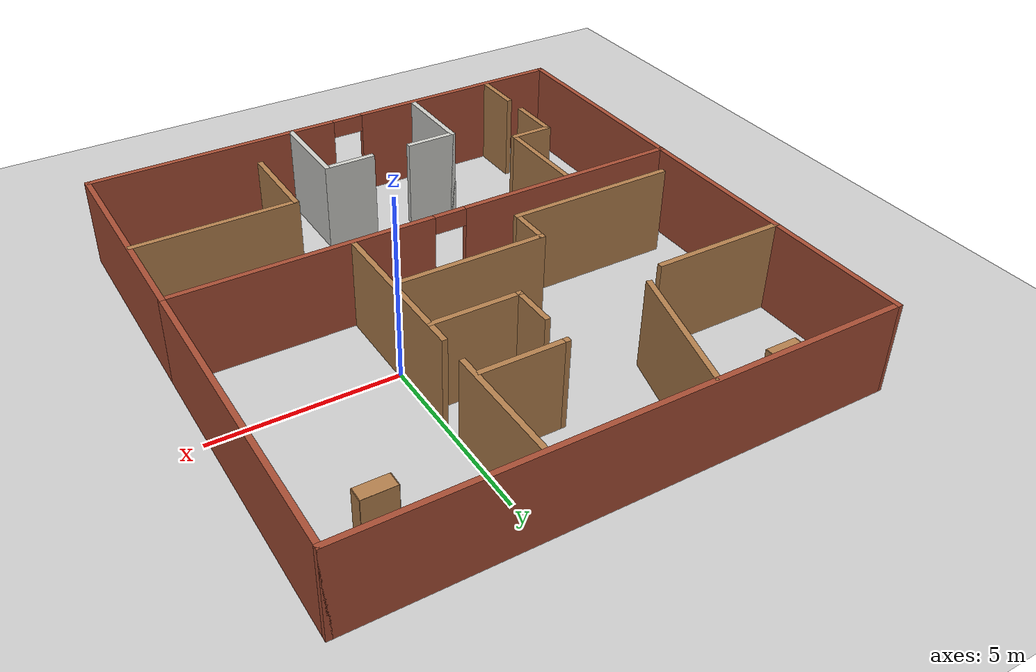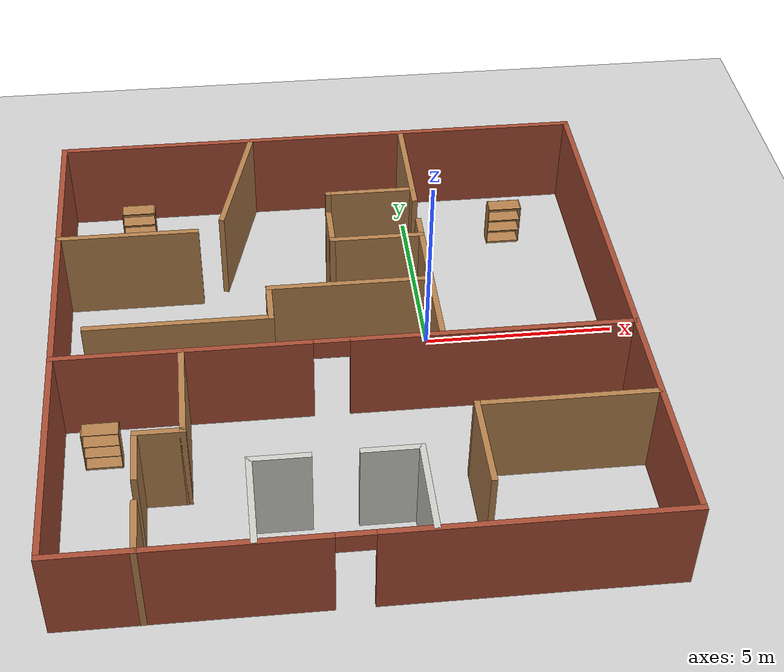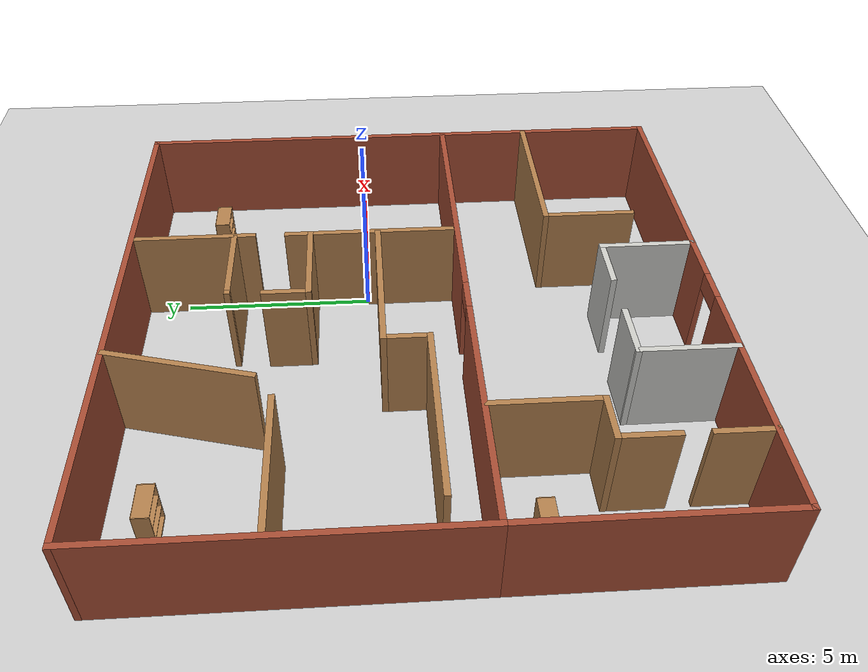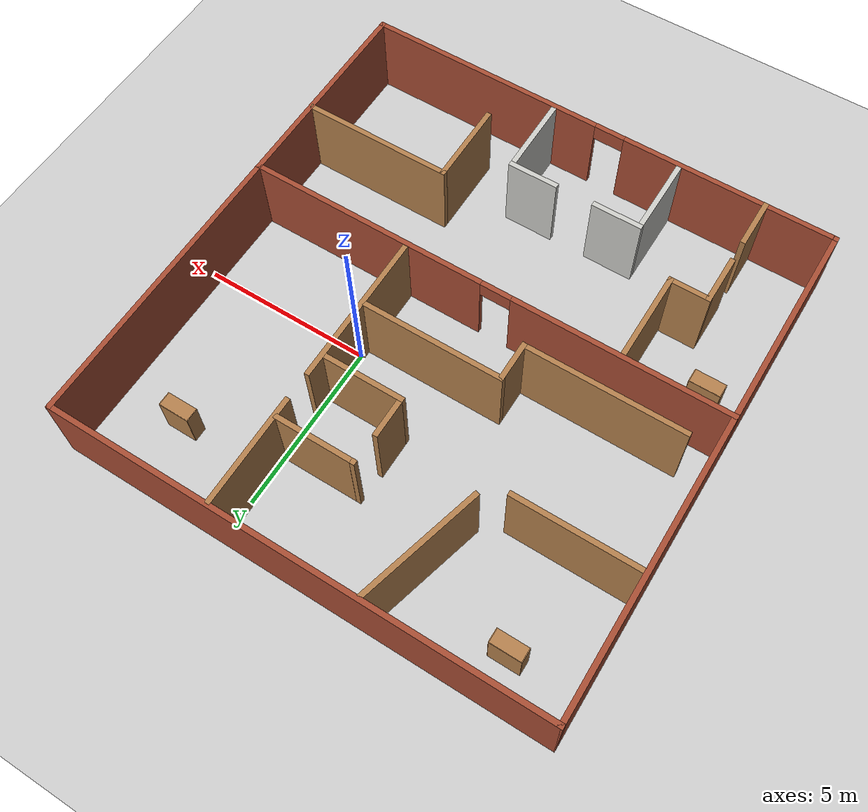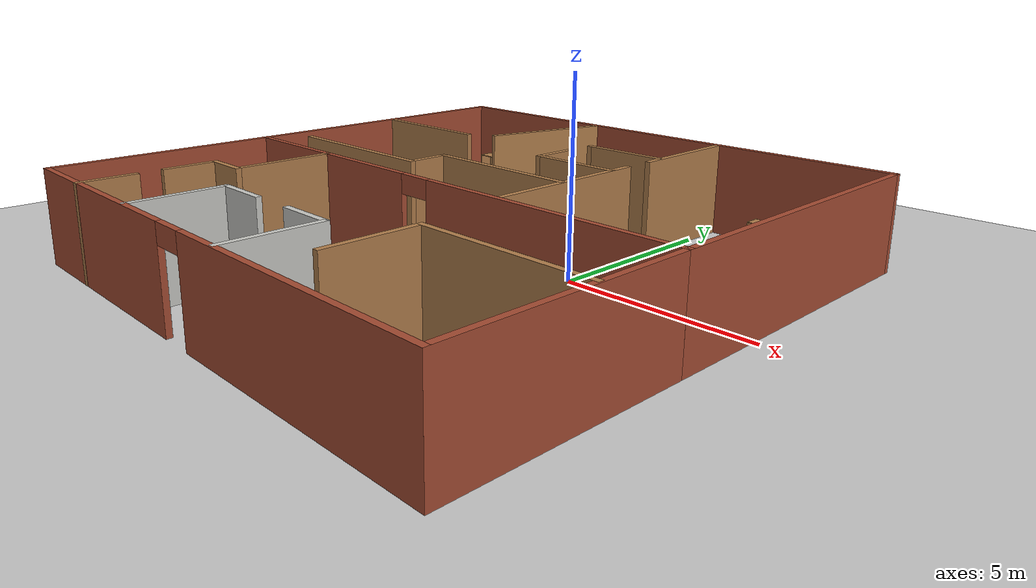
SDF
<sdf version="1.7">
 <world name="default">
  <light name="sun" type="directional">
   <pose>0 0 10 0 -0 0</pose>
   <diffuse>0.8 0.8 0.8 1</diffuse>
   <specular>0.2 0.2 0.2 1</specular>
   <attenuation>
    <range>1000</range>
    <constant>0.9</constant>
    <linear>0.01</linear>
    <quadratic>0.001</quadratic>
   </attenuation>
   <direction>-0.5 0.1 -0.9</direction>
   <spot><inner_angle>0</inner_angle><outer_angle>0</outer_angle><falloff>0</falloff></spot>
  </light>
  <model name="ground_plane">
   <static>1</static>
   <link name="link">
    <collision name="collision">
     <geometry><plane><normal>0 0 1</normal><size>100 100</size></plane></geometry>
     <surface><friction><ode><mu>100</mu><mu2>50</mu2></ode></friction></surface>
    </collision>
    <visual name="visual">
     <cast_shadows>0</cast_shadows>
     <geometry><plane><normal>0 0 1</normal><size>100 100</size></plane></geometry>
     <material>
      <script><uri>file://media/materials/scripts/gazebo.material</uri><name>Gazebo/Grey</name></script>
     </material>
    </visual>
   </link>
  </model>
  <gravity>0 0 -9.8</gravity>
  <magnetic_field>6e-06 2.3e-05 -4.2e-05</magnetic_field>
  <atmosphere type="adiabatic"/>
  <physics type="ode">
   <max_step_size>0.001</max_step_size>
   <real_time_factor>1</real_time_factor>
   <real_time_update_rate>1000</real_time_update_rate>
  </physics>
  <scene><ambient>0.4 0.4 0.4 1</ambient><background>0.7 0.7 0.7 1</background><shadows>1</shadows></scene>
  <audio><device>default</device></audio>
  <spherical_coordinates>
   <surface_model>EARTH_WGS84</surface_model>
   <latitude_deg>0</latitude_deg>
   <longitude_deg>0</longitude_deg>
   <elevation>0</elevation>
   <heading_deg>0</heading_deg>
  </spherical_coordinates>
  <model name="Untitled">
   <pose>-2.36663 -1.18476 0 0 -0 0</pose>
   <link name="Wall_1">
    <collision name="Wall_1_Collision">
     <geometry><box><size>8.75 0.15 2.5</size></box></geometry>
     <pose>0 0 1.25 0 -0 0</pose>
    </collision>
    <visual name="Wall_1_Visual">
     <pose>0 0 1.25 0 -0 0</pose>
     <geometry><box><size>8.75 0.15 2.5</size></box></geometry>
     <material>
      <script><uri>file://media/materials/scripts/gazebo.material</uri><name>Gazebo/Bricks</name></script>
      <ambient>1 1 1 1</ambient>
     </material>
     <meta><layer>0</layer></meta>
    </visual>
    <pose>-7.175 3.05351 0 0 -0 -1.5708</pose>
   </link>
   <link name="Wall_13">
    <collision name="Wall_13_Collision">
     <geometry><box><size>3.25 0.15 2.5</size></box></geometry>
     <pose>0 0 1.25 0 -0 0</pose>
    </collision>
    <visual name="Wall_13_Visual">
     <pose>0 0 1.25 0 -0 0</pose>
     <geometry><box><size>3.25 0.15 2.5</size></box></geometry>
     <material>
      <script><uri>file://media/materials/scripts/gazebo.material</uri><name>Gazebo/Wood</name></script>
      <ambient>1 1 1 1</ambient>
     </material>
     <meta><layer>0</layer></meta>
    </visual>
    <pose>2.35921 5.71681 0 0 -0 -1.5708</pose>
   </link>
   <link name="Wall_16">
    <collision name="Wall_16_Collision">
     <geometry><box><size>4.5 0.15 2.5</size></box></geometry>
     <pose>0 0 1.25 0 -0 0</pose>
    </collision>
    <visual name="Wall_16_Visual">
     <pose>0 0 1.25 0 -0 0</pose>
     <geometry><box><size>4.5 0.15 2.5</size></box></geometry>
     <material>
      <script><uri>file://media/materials/scripts/gazebo.material</uri><name>Gazebo/Wood</name></script>
      <ambient>1 1 1 1</ambient>
     </material>
     <meta><layer>0</layer></meta>
    </visual>
    <pose>2.34628 1.08384 0 0 -0 -1.5708</pose>
   </link>
   <link name="Wall_2">
    <pose>0 -1.24649 0 0 -0 0</pose>
    <visual name="Wall_2_Visual_0">
     <pose>-4.04235 0 1.25 0 -0 0</pose>
     <geometry><box><size>6.4153 0.15 2.5</size></box></geometry>
     <material>
      <script><uri>file://media/materials/scripts/gazebo.material</uri><name>Gazebo/Bricks</name></script>
      <ambient>1 1 1 1</ambient>
     </material>
     <meta><layer>0</layer></meta>
    </visual>
    <collision name="Wall_2_Collision_0">
     <geometry><box><size>6.4153 0.15 2.5</size></box></geometry>
     <pose>-4.04235 0 1.25 0 -0 0</pose>
    </collision>
    <visual name="Wall_2_Visual_1">
     <pose>3.65765 0 1.25 0 -0 0</pose>
     <geometry><box><size>7.1847 0.15 2.5</size></box></geometry>
     <material>
      <script><uri>file://media/materials/scripts/gazebo.material</uri><name>Gazebo/Bricks</name></script>
      <ambient>1 1 1 1</ambient>
     </material>
     <meta><layer>0</layer></meta>
    </visual>
    <collision name="Wall_2_Collision_1">
     <geometry><box><size>7.1847 0.15 2.5</size></box></geometry>
     <pose>3.65765 0 1.25 0 -0 0</pose>
    </collision>
    <visual name="Wall_2_Visual_2">
     <pose>-0.384696 0 2.25 0 -0 0</pose>
     <geometry><box><size>0.9 0.15 0.5</size></box></geometry>
     <material>
      <script><uri>file://media/materials/scripts/gazebo.material</uri><name>Gazebo/Bricks</name></script>
      <ambient>1 1 1 1</ambient>
     </material>
     <meta><layer>0</layer></meta>
    </visual>
    <collision name="Wall_2_Collision_2">
     <geometry><box><size>0.9 0.15 0.5</size></box></geometry>
     <pose>-0.384696 0 2.25 0 -0 0</pose>
    </collision>
   </link>
   <link name="Wall_22">
    <collision name="Wall_22_Collision">
     <geometry><box><size>3.75 0.15 2.5</size></box></geometry>
     <pose>0 0 1.25 0 -0 0</pose>
    </collision>
    <visual name="Wall_22_Visual">
     <pose>0 0 1.25 0 -0 0</pose>
     <geometry><box><size>3.75 0.15 2.5</size></box></geometry>
     <material>
      <script><uri>file://media/materials/scripts/gazebo.material</uri><name>Gazebo/Wood</name></script>
      <ambient>1 1 1 1</ambient>
     </material>
     <meta><layer>0</layer></meta>
    </visual>
    <pose>-5.37429 3.37191 0 0 -0 0</pose>
   </link>
   <link name="Wall_3">
    <collision name="Wall_3_Collision">
     <geometry><box><size>8.75 0.15 2.5</size></box></geometry>
     <pose>0 0 1.25 0 -0 0</pose>
    </collision>
    <visual name="Wall_3_Visual">
     <pose>0 0 1.25 0 -0 0</pose>
     <geometry><box><size>8.75 0.15 2.5</size></box></geometry>
     <material>
      <script><uri>file://media/materials/scripts/gazebo.material</uri><name>Gazebo/Bricks</name></script>
      <ambient>1 1 1 1</ambient>
     </material>
     <meta><layer>0</layer></meta>
    </visual>
    <pose>7.175 3.05351 0 0 -0 1.5708</pose>
   </link>
   <link name="Wall_30">
    <collision name="Wall_30_Collision">
     <geometry><box><size>1.5 0.15 2.5</size></box></geometry>
     <pose>0 0 1.25 0 -0 0</pose>
    </collision>
    <visual name="Wall_30_Visual">
     <pose>0 0 1.25 0 -0 0</pose>
     <geometry><box><size>1.5 0.15 2.5</size></box></geometry>
     <material>
      <script><uri>file://media/materials/scripts/gazebo.material</uri><name>Gazebo/CeilingTiled</name></script>
      <ambient>1 1 1 1</ambient>
     </material>
     <meta><layer>0</layer></meta>
    </visual>
    <pose>0.662776 -4.9551 0 0 -0 3.14159</pose>
   </link>
   <link name="Wall_32">
    <collision name="Wall_32_Collision">
     <geometry><box><size>2.5 0.15 2.5</size></box></geometry>
     <pose>0 0 1.25 0 -0 0</pose>
    </collision>
    <visual name="Wall_32_Visual">
     <pose>0 0 1.25 0 -0 0</pose>
     <geometry><box><size>2.5 0.15 2.5</size></box></geometry>
     <material>
      <script><uri>file://media/materials/scripts/gazebo.material</uri><name>Gazebo/CeilingTiled</name></script>
      <ambient>1 1 1 1</ambient>
     </material>
     <meta><layer>0</layer></meta>
    </visual>
    <pose>1.33778 -6.13011 0 0 -0 -1.5708</pose>
   </link>
   <link name="Wall_37">
    <collision name="Wall_37_Collision">
     <geometry><box><size>2.5 0.15 2.5</size></box></geometry>
     <pose>0 0 1.25 0 -0 0</pose>
    </collision>
    <visual name="Wall_37_Visual">
     <pose>0 0 1.25 0 -0 0</pose>
     <geometry><box><size>2.5 0.15 2.5</size></box></geometry>
     <material>
      <script><uri>file://media/materials/scripts/gazebo.material</uri><name>Gazebo/CeilingTiled</name></script>
      <ambient>1 1 1 1</ambient>
     </material>
     <meta><layer>0</layer></meta>
    </visual>
    <pose>-2.59232 -6.14373 0 0 -0 -1.5708</pose>
   </link>
   <link name="Wall_39">
    <collision name="Wall_39_Collision">
     <geometry><box><size>1.5 0.15 2.5</size></box></geometry>
     <pose>0 0 1.25 0 -0 0</pose>
    </collision>
    <visual name="Wall_39_Visual">
     <pose>0 0 1.25 0 -0 0</pose>
     <geometry><box><size>1.5 0.15 2.5</size></box></geometry>
     <material>
      <script><uri>file://media/materials/scripts/gazebo.material</uri><name>Gazebo/CeilingTiled</name></script>
      <ambient>1 1 1 1</ambient>
     </material>
     <meta><layer>0</layer></meta>
    </visual>
    <pose>-1.91732 -4.96873 0 0 -0 0</pose>
   </link>
   <link name="Wall_41">
    <collision name="Wall_41_Collision">
     <geometry><box><size>2.75 0.15 2.5</size></box></geometry>
     <pose>0 0 1.25 0 -0 0</pose>
    </collision>
    <visual name="Wall_41_Visual">
     <pose>0 0 1.25 0 -0 0</pose>
     <geometry><box><size>2.75 0.15 2.5</size></box></geometry>
     <material>
      <script><uri>file://media/materials/scripts/gazebo.material</uri><name>Gazebo/Wood</name></script>
      <ambient>1 1 1 1</ambient>
     </material>
     <meta><layer>0</layer></meta>
    </visual>
    <pose>-4.04359 -2.61132 0 0 -0 -1.5708</pose>
   </link>
   <link name="Wall_42">
    <collision name="Wall_42_Collision">
     <geometry><box><size>1.25 0.15 2.5</size></box></geometry>
     <pose>0 0 1.25 0 -0 0</pose>
    </collision>
    <visual name="Wall_42_Visual">
     <pose>0 0 1.25 0 -0 0</pose>
     <geometry><box><size>1.25 0.15 2.5</size></box></geometry>
     <material>
      <script><uri>file://media/materials/scripts/gazebo.material</uri><name>Gazebo/Wood</name></script>
      <ambient>1 1 1 1</ambient>
     </material>
     <meta><layer>0</layer></meta>
    </visual>
    <pose>-4.59359 -3.91132 0 0 -0 3.14159</pose>
   </link>
   <link name="Wall_43">
    <collision name="Wall_43_Collision">
     <geometry><box><size>1.5 0.15 2.5</size></box></geometry>
     <pose>0 0 1.25 0 -0 0</pose>
    </collision>
    <visual name="Wall_43_Visual">
     <pose>0 0 1.25 0 -0 0</pose>
     <geometry><box><size>1.5 0.15 2.5</size></box></geometry>
     <material>
      <script><uri>file://media/materials/scripts/gazebo.material</uri><name>Gazebo/Wood</name></script>
      <ambient>1 1 1 1</ambient>
     </material>
     <meta><layer>0</layer></meta>
    </visual>
    <pose>-5.14359 -4.58632 0 0 -0 -1.5708</pose>
   </link>
   <link name="Wall_45">
    <collision name="Wall_45_Collision">
     <geometry><box><size>1.5 0.15 2.5</size></box></geometry>
     <pose>0 0 1.25 0 -0 0</pose>
    </collision>
    <visual name="Wall_45_Visual">
     <pose>0 0 1.25 0 -0 0</pose>
     <geometry><box><size>1.5 0.15 2.5</size></box></geometry>
     <material>
      <script><uri>file://media/materials/scripts/gazebo.material</uri><name>Gazebo/Wood</name></script>
      <ambient>1 1 1 1</ambient>
     </material>
     <meta><layer>0</layer></meta>
    </visual>
    <pose>-5.13731 -6.67851 0 0 -0 -1.5708</pose>
   </link>
   <link name="Wall_47">
    <collision name="Wall_47_Collision">
     <geometry><box><size>4.25 0.15 2.5</size></box></geometry>
     <pose>0 0 1.25 0 -0 0</pose>
    </collision>
    <visual name="Wall_47_Visual">
     <pose>0 0 1.25 0 -0 0</pose>
     <geometry><box><size>4.25 0.15 2.5</size></box></geometry>
     <material>
      <script><uri>file://media/materials/scripts/gazebo.material</uri><name>Gazebo/Wood</name></script>
      <ambient>1 1 1 1</ambient>
     </material>
     <meta><layer>0</layer></meta>
    </visual>
    <pose>0.253068 0.868139 0 0 -0 3.14159</pose>
   </link>
   <link name="Wall_48">
    <collision name="Wall_48_Collision">
     <geometry><box><size>1.25 0.15 2.5</size></box></geometry>
     <pose>0 0 1.25 0 -0 0</pose>
    </collision>
    <visual name="Wall_48_Visual">
     <pose>0 0 1.25 0 -0 0</pose>
     <geometry><box><size>1.25 0.15 2.5</size></box></geometry>
     <material>
      <script><uri>file://media/materials/scripts/gazebo.material</uri><name>Gazebo/Wood</name></script>
      <ambient>1 1 1 1</ambient>
     </material>
     <meta><layer>0</layer></meta>
    </visual>
    <pose>-1.79693 0.318139 0 0 -0 -1.5708</pose>
   </link>
   <link name="Wall_49">
    <collision name="Wall_49_Collision">
     <geometry><box><size>4.75 0.15 2.5</size></box></geometry>
     <pose>0 0 1.25 0 -0 0</pose>
    </collision>
    <visual name="Wall_49_Visual">
     <pose>0 0 1.25 0 -0 0</pose>
     <geometry><box><size>4.75 0.15 2.5</size></box></geometry>
     <material>
      <script><uri>file://media/materials/scripts/gazebo.material</uri><name>Gazebo/Wood</name></script>
      <ambient>1 1 1 1</ambient>
     </material>
     <meta><layer>0</layer></meta>
    </visual>
    <pose>-4.09693 -0.231861 0 0 -0 3.14159</pose>
   </link>
   <link name="Wall_5">
    <collision name="Wall_5_Collision">
     <geometry><box><size>14.5 0.15 2.5</size></box></geometry>
     <pose>0 0 1.25 0 -0 0</pose>
    </collision>
    <visual name="Wall_5_Visual">
     <pose>0 0 1.25 0 -0 0</pose>
     <geometry><box><size>14.5 0.15 2.5</size></box></geometry>
     <material>
      <script><uri>file://media/materials/scripts/gazebo.material</uri><name>Gazebo/Bricks</name></script>
      <ambient>1 1 1 1</ambient>
     </material>
     <meta><layer>0</layer></meta>
    </visual>
    <pose>0 7.35351 0 0 -0 0</pose>
   </link>
   <link name="Wall_55">
    <collision name="Wall_55_Collision">
     <geometry><box><size>3.75 0.15 2.5</size></box></geometry>
     <pose>0 0 1.25 0 -0 0</pose>
    </collision>
    <visual name="Wall_55_Visual">
     <pose>0 0 1.25 0 -0 0</pose>
     <geometry><box><size>3.75 0.15 2.5</size></box></geometry>
     <material>
      <script><uri>file://media/materials/scripts/gazebo.material</uri><name>Gazebo/Wood</name></script>
      <ambient>1 1 1 1</ambient>
     </material>
     <meta><layer>0</layer></meta>
    </visual>
    <pose>-2.39934 5.56245 0 0 -0 -1.8326</pose>
   </link>
   <link name="Wall_57">
    <collision name="Wall_57_Collision">
     <geometry><box><size>4.5 0.15 2.5</size></box></geometry>
     <pose>0 0 1.25 0 -0 0</pose>
    </collision>
    <visual name="Wall_57_Visual">
     <pose>0 0 1.25 0 -0 0</pose>
     <geometry><box><size>4.5 0.15 2.5</size></box></geometry>
     <material>
      <script><uri>file://media/materials/scripts/gazebo.material</uri><name>Gazebo/Wood</name></script>
      <ambient>1 1 1 1</ambient>
     </material>
     <meta><layer>0</layer></meta>
    </visual>
    <pose>4.9622 -3.71137 0 0 -0 3.14159</pose>
   </link>
   <link name="Wall_58">
    <collision name="Wall_58_Collision">
     <geometry><box><size>2.5 0.15 2.5</size></box></geometry>
     <pose>0 0 1.25 0 -0 0</pose>
    </collision>
    <visual name="Wall_58_Visual">
     <pose>0 0 1.25 0 -0 0</pose>
     <geometry><box><size>2.5 0.15 2.5</size></box></geometry>
     <material>
      <script><uri>file://media/materials/scripts/gazebo.material</uri><name>Gazebo/Wood</name></script>
      <ambient>1 1 1 1</ambient>
     </material>
     <meta><layer>0</layer></meta>
    </visual>
    <pose>2.7872 -4.88637 0 0 -0 -1.5708</pose>
   </link>
   <link name="Wall_68">
    <collision name="Wall_68_Collision">
     <geometry><box><size>0.15 0.15 2.5</size></box></geometry>
     <pose>0 0 1.25 0 -0 0</pose>
    </collision>
    <visual name="Wall_68_Visual">
     <pose>0 0 1.25 0 -0 0</pose>
     <geometry><box><size>0.15 0.15 2.5</size></box></geometry>
     <material>
      <script><uri>file://media/materials/scripts/gazebo.material</uri><name>Gazebo/Wood</name></script>
      <ambient>1 1 1 1</ambient>
     </material>
     <meta><layer>0</layer></meta>
    </visual>
    <pose>0.049283 4.65202 0 0 -0 0</pose>
   </link>
   <link name="Wall_7">
    <collision name="Wall_7_Collision">
     <geometry><box><size>6.25 0.15 2.5</size></box></geometry>
     <pose>0 0 1.25 0 -0 0</pose>
    </collision>
    <visual name="Wall_7_Visual">
     <pose>0 0 1.25 0 -0 0</pose>
     <geometry><box><size>6.25 0.15 2.5</size></box></geometry>
     <material>
      <script><uri>file://media/materials/scripts/gazebo.material</uri><name>Gazebo/Bricks</name></script>
      <ambient>1 1 1 1</ambient>
     </material>
     <meta><layer>0</layer></meta>
    </visual>
    <pose>-7.175 -4.29648 0 0 -0 -1.5708</pose>
   </link>
   <link name="Wall_73">
    <collision name="Wall_73_Collision">
     <geometry><box><size>2.25 0.15 2.5</size></box></geometry>
     <pose>0 0 1.25 0 -0 0</pose>
    </collision>
    <visual name="Wall_73_Visual">
     <pose>0 0 1.25 0 -0 0</pose>
     <geometry><box><size>2.25 0.15 2.5</size></box></geometry>
     <material>
      <script><uri>file://media/materials/scripts/gazebo.material</uri><name>Gazebo/Wood</name></script>
      <ambient>1 1 1 1</ambient>
     </material>
     <meta><layer>0</layer></meta>
    </visual>
    <pose>1.24062 4.65266 0 0 -0 0</pose>
   </link>
   <link name="Wall_75">
    <collision name="Wall_75_Collision">
     <geometry><box><size>2.5 0.15 2.5</size></box></geometry>
     <pose>0 0 1.25 0 -0 0</pose>
    </collision>
    <visual name="Wall_75_Visual">
     <pose>0 0 1.25 0 -0 0</pose>
     <geometry><box><size>2.5 0.15 2.5</size></box></geometry>
     <material>
      <script><uri>file://media/materials/scripts/gazebo.material</uri><name>Gazebo/Wood</name></script>
      <ambient>1 1 1 1</ambient>
     </material>
     <meta><layer>0</layer></meta>
    </visual>
    <pose>1.16272 2.65061 0 0 -0 3.14159</pose>
   </link>
   <link name="Wall_76">
    <collision name="Wall_76_Collision">
     <geometry><box><size>1.25 0.15 2.5</size></box></geometry>
     <pose>0 0 1.25 0 -0 0</pose>
    </collision>
    <visual name="Wall_76_Visual">
     <pose>0 0 1.25 0 -0 0</pose>
     <geometry><box><size>1.25 0.15 2.5</size></box></geometry>
     <material>
      <script><uri>file://media/materials/scripts/gazebo.material</uri><name>Gazebo/Wood</name></script>
      <ambient>1 1 1 1</ambient>
     </material>
     <meta><layer>0</layer></meta>
    </visual>
    <pose>-0.012277 3.20061 0 0 -0 1.5708</pose>
   </link>
   <link name="Wall_8">
    <pose>0 -7.34649 0 0 -0 0</pose>
    <visual name="Wall_8_Visual_0">
     <pose>-4.05756 0 1.25 0 -0 0</pose>
     <geometry><box><size>6.38489 0.15 2.5</size></box></geometry>
     <material>
      <script><uri>file://media/materials/scripts/gazebo.material</uri><name>Gazebo/Bricks</name></script>
      <ambient>1 1 1 1</ambient>
     </material>
     <meta><layer>0</layer></meta>
    </visual>
    <collision name="Wall_8_Collision_0">
     <geometry><box><size>6.38489 0.15 2.5</size></box></geometry>
     <pose>-4.05756 0 1.25 0 -0 0</pose>
    </collision>
    <visual name="Wall_8_Visual_1">
     <pose>3.64244 0 1.25 0 -0 0</pose>
     <geometry><box><size>7.21511 0.15 2.5</size></box></geometry>
     <material>
      <script><uri>file://media/materials/scripts/gazebo.material</uri><name>Gazebo/Bricks</name></script>
      <ambient>1 1 1 1</ambient>
     </material>
     <meta><layer>0</layer></meta>
    </visual>
    <collision name="Wall_8_Collision_1">
     <geometry><box><size>7.21511 0.15 2.5</size></box></geometry>
     <pose>3.64244 0 1.25 0 -0 0</pose>
    </collision>
    <visual name="Wall_8_Visual_2">
     <pose>-0.415114 0 2.25 0 -0 0</pose>
     <geometry><box><size>0.9 0.15 0.5</size></box></geometry>
     <material>
      <script><uri>file://media/materials/scripts/gazebo.material</uri><name>Gazebo/Bricks</name></script>
      <ambient>1 1 1 1</ambient>
     </material>
     <meta><layer>0</layer></meta>
    </visual>
    <collision name="Wall_8_Collision_2">
     <geometry><box><size>0.9 0.15 0.5</size></box></geometry>
     <pose>-0.415114 0 2.25 0 -0 0</pose>
    </collision>
   </link>
   <link name="Wall_9">
    <collision name="Wall_9_Collision">
     <geometry><box><size>6.25 0.15 2.5</size></box></geometry>
     <pose>0 0 1.25 0 -0 0</pose>
    </collision>
    <visual name="Wall_9_Visual">
     <pose>0 0 1.25 0 -0 0</pose>
     <geometry><box><size>6.25 0.15 2.5</size></box></geometry>
     <material>
      <script><uri>file://media/materials/scripts/gazebo.material</uri><name>Gazebo/Bricks</name></script>
      <ambient>1 1 1 1</ambient>
     </material>
     <meta><layer>0</layer></meta>
    </visual>
    <pose>7.175 -4.29648 0 0 -0 1.5708</pose>
   </link>
   <static>1</static>
  </model>
  <model name="bookshelf">
   <static>1</static>
   <link name="link">
    <inertial><mass>1</mass></inertial>
    <collision name="back">
     <pose>0 0.005 0.6 0 -0 0</pose>
     <geometry><box><size>0.9 0.01 1.2</size></box></geometry>
    </collision>
    <visual name="visual1">
     <pose>0 0.005 0.6 0 -0 0</pose>
     <geometry><box><size>0.9 0.01 1.2</size></box></geometry>
     <material>
      <script><uri>file://media/materials/scripts/gazebo.material</uri><name>Gazebo/Wood</name></script>
     </material>
    </visual>
    <collision name="left_side">
     <pose>0.45 -0.195 0.6 0 -0 0</pose>
     <geometry><box><size>0.02 0.4 1.2</size></box></geometry>
    </collision>
    <visual name="visual2">
     <pose>0.45 -0.195 0.6 0 -0 0</pose>
     <geometry><box><size>0.02 0.4 1.2</size></box></geometry>
     <material>
      <script><uri>file://media/materials/scripts/gazebo.material</uri><name>Gazebo/Wood</name></script>
     </material>
    </visual>
    <collision name="right_side">
     <pose>-0.45 -0.195 0.6 0 -0 0</pose>
     <geometry><box><size>0.02 0.4 1.2</size></box></geometry>
    </collision>
    <visual name="visual3">
     <pose>-0.45 -0.195 0.6 0 -0 0</pose>
     <geometry><box><size>0.02 0.4 1.2</size></box></geometry>
     <material>
      <script><uri>file://media/materials/scripts/gazebo.material</uri><name>Gazebo/Wood</name></script>
     </material>
    </visual>
    <collision name="bottom">
     <pose>0 -0.195 0.03 0 -0 0</pose>
     <geometry><box><size>0.88 0.4 0.06</size></box></geometry>
    </collision>
    <visual name="visual4">
     <pose>0 -0.195 0.03 0 -0 0</pose>
     <geometry><box><size>0.88 0.4 0.06</size></box></geometry>
     <material>
      <script><uri>file://media/materials/scripts/gazebo.material</uri><name>Gazebo/Wood</name></script>
     </material>
    </visual>
    <collision name="top">
     <pose>0 -0.195 1.19 0 -0 0</pose>
     <geometry><box><size>0.88 0.4 0.02</size></box></geometry>
    </collision>
    <visual name="visual5">
     <pose>0 -0.195 1.19 0 -0 0</pose>
     <geometry><box><size>0.88 0.4 0.02</size></box></geometry>
     <material>
      <script><uri>file://media/materials/scripts/gazebo.material</uri><name>Gazebo/Wood</name></script>
     </material>
    </visual>
    <collision name="low_shelf">
     <pose>0 -0.195 0.43 0 -0 0</pose>
     <geometry><box><size>0.88 0.4 0.02</size></box></geometry>
    </collision>
    <visual name="visual6">
     <pose>0 -0.195 0.43 0 -0 0</pose>
     <geometry><box><size>0.88 0.4 0.02</size></box></geometry>
     <material>
      <script><uri>file://media/materials/scripts/gazebo.material</uri><name>Gazebo/Wood</name></script>
     </material>
    </visual>
    <collision name="high_shelf">
     <pose>0 -0.195 0.8 0 -0 0</pose>
     <geometry><box><size>0.88 0.4 0.02</size></box></geometry>
    </collision>
    <visual name="visual7">
     <pose>0 -0.195 0.8 0 -0 0</pose>
     <geometry><box><size>0.88 0.4 0.02</size></box></geometry>
     <material>
      <script><uri>file://media/materials/scripts/gazebo.material</uri><name>Gazebo/Wood</name></script>
     </material>
    </visual>
   </link>
   <pose>2.74759 4.3622 0 0 -0 0</pose>
  </model>
  <model name="bookshelf_0">
   <static>1</static>
   <link name="link">
    <inertial><mass>1</mass></inertial>
    <collision name="back">
     <pose>0 0.005 0.6 0 -0 0</pose>
     <geometry><box><size>0.9 0.01 1.2</size></box></geometry>
    </collision>
    <visual name="visual1">
     <pose>0 0.005 0.6 0 -0 0</pose>
     <geometry><box><size>0.9 0.01 1.2</size></box></geometry>
     <material>
      <script><uri>file://media/materials/scripts/gazebo.material</uri><name>Gazebo/Wood</name></script>
     </material>
    </visual>
    <collision name="left_side">
     <pose>0.45 -0.195 0.6 0 -0 0</pose>
     <geometry><box><size>0.02 0.4 1.2</size></box></geometry>
    </collision>
    <visual name="visual2">
     <pose>0.45 -0.195 0.6 0 -0 0</pose>
     <geometry><box><size>0.02 0.4 1.2</size></box></geometry>
     <material>
      <script><uri>file://media/materials/scripts/gazebo.material</uri><name>Gazebo/Wood</name></script>
     </material>
    </visual>
    <collision name="right_side">
     <pose>-0.45 -0.195 0.6 0 -0 0</pose>
     <geometry><box><size>0.02 0.4 1.2</size></box></geometry>
    </collision>
    <visual name="visual3">
     <pose>-0.45 -0.195 0.6 0 -0 0</pose>
     <geometry><box><size>0.02 0.4 1.2</size></box></geometry>
     <material>
      <script><uri>file://media/materials/scripts/gazebo.material</uri><name>Gazebo/Wood</name></script>
     </material>
    </visual>
    <collision name="bottom">
     <pose>0 -0.195 0.03 0 -0 0</pose>
     <geometry><box><size>0.88 0.4 0.06</size></box></geometry>
    </collision>
    <visual name="visual4">
     <pose>0 -0.195 0.03 0 -0 0</pose>
     <geometry><box><size>0.88 0.4 0.06</size></box></geometry>
     <material>
      <script><uri>file://media/materials/scripts/gazebo.material</uri><name>Gazebo/Wood</name></script>
     </material>
    </visual>
    <collision name="top">
     <pose>0 -0.195 1.19 0 -0 0</pose>
     <geometry><box><size>0.88 0.4 0.02</size></box></geometry>
    </collision>
    <visual name="visual5">
     <pose>0 -0.195 1.19 0 -0 0</pose>
     <geometry><box><size>0.88 0.4 0.02</size></box></geometry>
     <material>
      <script><uri>file://media/materials/scripts/gazebo.material</uri><name>Gazebo/Wood</name></script>
     </material>
    </visual>
    <collision name="low_shelf">
     <pose>0 -0.195 0.43 0 -0 0</pose>
     <geometry><box><size>0.88 0.4 0.02</size></box></geometry>
    </collision>
    <visual name="visual6">
     <pose>0 -0.195 0.43 0 -0 0</pose>
     <geometry><box><size>0.88 0.4 0.02</size></box></geometry>
     <material>
      <script><uri>file://media/materials/scripts/gazebo.material</uri><name>Gazebo/Wood</name></script>
     </material>
    </visual>
    <collision name="high_shelf">
     <pose>0 -0.195 0.8 0 -0 0</pose>
     <geometry><box><size>0.88 0.4 0.02</size></box></geometry>
    </collision>
    <visual name="visual7">
     <pose>0 -0.195 0.8 0 -0 0</pose>
     <geometry><box><size>0.88 0.4 0.02</size></box></geometry>
     <material>
      <script><uri>file://media/materials/scripts/gazebo.material</uri><name>Gazebo/Wood</name></script>
     </material>
    </visual>
   </link>
   <pose>-7.58519 5.14432 0 0 -0 0</pose>
  </model>
  <model name="bookshelf_1">
   <static>1</static>
   <link name="link">
    <inertial><mass>1</mass></inertial>
    <collision name="back">
     <pose>0 0.005 0.6 0 -0 0</pose>
     <geometry><box><size>0.9 0.01 1.2</size></box></geometry>
    </collision>
    <visual name="visual1">
     <pose>0 0.005 0.6 0 -0 0</pose>
     <geometry><box><size>0.9 0.01 1.2</size></box></geometry>
     <material>
      <script><uri>file://media/materials/scripts/gazebo.material</uri><name>Gazebo/Wood</name></script>
     </material>
    </visual>
    <collision name="left_side">
     <pose>0.45 -0.195 0.6 0 -0 0</pose>
     <geometry><box><size>0.02 0.4 1.2</size></box></geometry>
    </collision>
    <visual name="visual2">
     <pose>0.45 -0.195 0.6 0 -0 0</pose>
     <geometry><box><size>0.02 0.4 1.2</size></box></geometry>
     <material>
      <script><uri>file://media/materials/scripts/gazebo.material</uri><name>Gazebo/Wood</name></script>
     </material>
    </visual>
    <collision name="right_side">
     <pose>-0.45 -0.195 0.6 0 -0 0</pose>
     <geometry><box><size>0.02 0.4 1.2</size></box></geometry>
    </collision>
    <visual name="visual3">
     <pose>-0.45 -0.195 0.6 0 -0 0</pose>
     <geometry><box><size>0.02 0.4 1.2</size></box></geometry>
     <material>
      <script><uri>file://media/materials/scripts/gazebo.material</uri><name>Gazebo/Wood</name></script>
     </material>
    </visual>
    <collision name="bottom">
     <pose>0 -0.195 0.03 0 -0 0</pose>
     <geometry><box><size>0.88 0.4 0.06</size></box></geometry>
    </collision>
    <visual name="visual4">
     <pose>0 -0.195 0.03 0 -0 0</pose>
     <geometry><box><size>0.88 0.4 0.06</size></box></geometry>
     <material>
      <script><uri>file://media/materials/scripts/gazebo.material</uri><name>Gazebo/Wood</name></script>
     </material>
    </visual>
    <collision name="top">
     <pose>0 -0.195 1.19 0 -0 0</pose>
     <geometry><box><size>0.88 0.4 0.02</size></box></geometry>
    </collision>
    <visual name="visual5">
     <pose>0 -0.195 1.19 0 -0 0</pose>
     <geometry><box><size>0.88 0.4 0.02</size></box></geometry>
     <material>
      <script><uri>file://media/materials/scripts/gazebo.material</uri><name>Gazebo/Wood</name></script>
     </material>
    </visual>
    <collision name="low_shelf">
     <pose>0 -0.195 0.43 0 -0 0</pose>
     <geometry><box><size>0.88 0.4 0.02</size></box></geometry>
    </collision>
    <visual name="visual6">
     <pose>0 -0.195 0.43 0 -0 0</pose>
     <geometry><box><size>0.88 0.4 0.02</size></box></geometry>
     <material>
      <script><uri>file://media/materials/scripts/gazebo.material</uri><name>Gazebo/Wood</name></script>
     </material>
    </visual>
    <collision name="high_shelf">
     <pose>0 -0.195 0.8 0 -0 0</pose>
     <geometry><box><size>0.88 0.4 0.02</size></box></geometry>
    </collision>
    <visual name="visual7">
     <pose>0 -0.195 0.8 0 -0 0</pose>
     <geometry><box><size>0.88 0.4 0.02</size></box></geometry>
     <material>
      <script><uri>file://media/materials/scripts/gazebo.material</uri><name>Gazebo/Wood</name></script>
     </material>
    </visual>
   </link>
   <pose>-8.4674 -3.42135 0 0 -0 0</pose>
  </model>
 </world>
</sdf>
